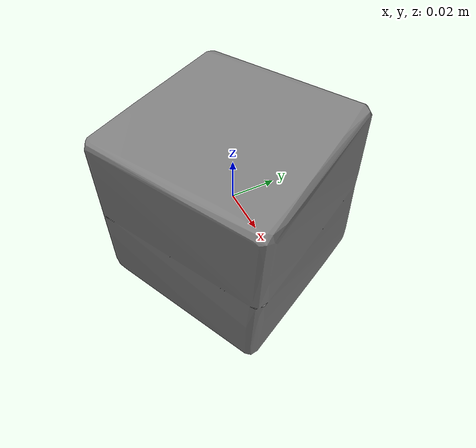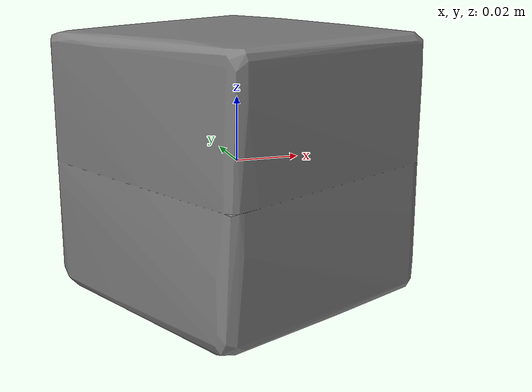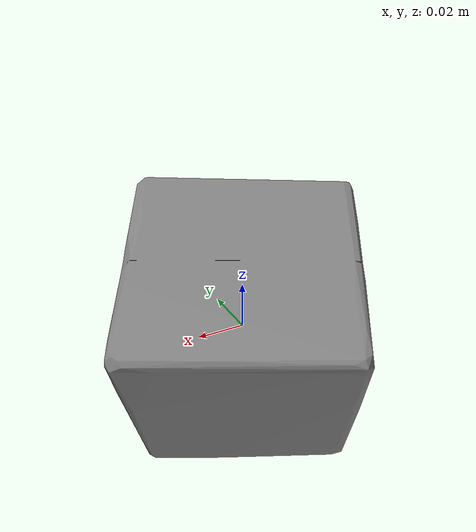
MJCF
<mujoco model="rubiks_cube_077_rubiks_cube_M">
  <default>
    <default class="visual">
      <geom group="2" type="mesh" contype="0" conaffinity="0" />
    </default>
    <default class="collision">
      <geom group="3" type="mesh" />
    </default>
  </default>
  <asset>
    <mesh file="rubiks_cube_077_rubiks_cube_M.stl" />
    <mesh file="rubiks_cube_077_rubiks_cube_M_collision_0.stl" />
    <mesh file="rubiks_cube_077_rubiks_cube_M_collision_1.stl" />
    <mesh file="rubiks_cube_077_rubiks_cube_M_collision_2.stl" />
    <mesh file="rubiks_cube_077_rubiks_cube_M_collision_3.stl" />
    <mesh file="rubiks_cube_077_rubiks_cube_M_collision_4.stl" />
    <mesh file="rubiks_cube_077_rubiks_cube_M_collision_5.stl" />
    <mesh file="rubiks_cube_077_rubiks_cube_M_collision_6.stl" />
    <mesh file="rubiks_cube_077_rubiks_cube_M_collision_7.stl" />
    <mesh file="rubiks_cube_077_rubiks_cube_M_collision_8.stl" />
    <mesh file="rubiks_cube_077_rubiks_cube_M_collision_9.stl" />
    <mesh file="rubiks_cube_077_rubiks_cube_M_collision_10.stl" />
    <mesh file="rubiks_cube_077_rubiks_cube_M_collision_11.stl" />
    <mesh file="rubiks_cube_077_rubiks_cube_M_collision_12.stl" />
    <mesh file="rubiks_cube_077_rubiks_cube_M_collision_13.stl" />
    <mesh file="rubiks_cube_077_rubiks_cube_M_collision_14.stl" />
    <mesh file="rubiks_cube_077_rubiks_cube_M_collision_15.stl" />
  </asset>
  <worldbody>
    <body name="rubiks_cube_077_rubiks_cube_M">
      <geom mesh="rubiks_cube_077_rubiks_cube_M" class="visual" />
      <geom mesh="rubiks_cube_077_rubiks_cube_M_collision_0" class="collision" />
      <geom mesh="rubiks_cube_077_rubiks_cube_M_collision_1" class="collision" />
      <geom mesh="rubiks_cube_077_rubiks_cube_M_collision_2" class="collision" />
      <geom mesh="rubiks_cube_077_rubiks_cube_M_collision_3" class="collision" />
      <geom mesh="rubiks_cube_077_rubiks_cube_M_collision_4" class="collision" />
      <geom mesh="rubiks_cube_077_rubiks_cube_M_collision_5" class="collision" />
      <geom mesh="rubiks_cube_077_rubiks_cube_M_collision_6" class="collision" />
      <geom mesh="rubiks_cube_077_rubiks_cube_M_collision_7" class="collision" />
      <geom mesh="rubiks_cube_077_rubiks_cube_M_collision_8" class="collision" />
      <geom mesh="rubiks_cube_077_rubiks_cube_M_collision_9" class="collision" />
      <geom mesh="rubiks_cube_077_rubiks_cube_M_collision_10" class="collision" />
      <geom mesh="rubiks_cube_077_rubiks_cube_M_collision_11" class="collision" />
      <geom mesh="rubiks_cube_077_rubiks_cube_M_collision_12" class="collision" />
      <geom mesh="rubiks_cube_077_rubiks_cube_M_collision_13" class="collision" />
      <geom mesh="rubiks_cube_077_rubiks_cube_M_collision_14" class="collision" />
      <geom mesh="rubiks_cube_077_rubiks_cube_M_collision_15" class="collision" />
    </body>
  </worldbody>
</mujoco>
